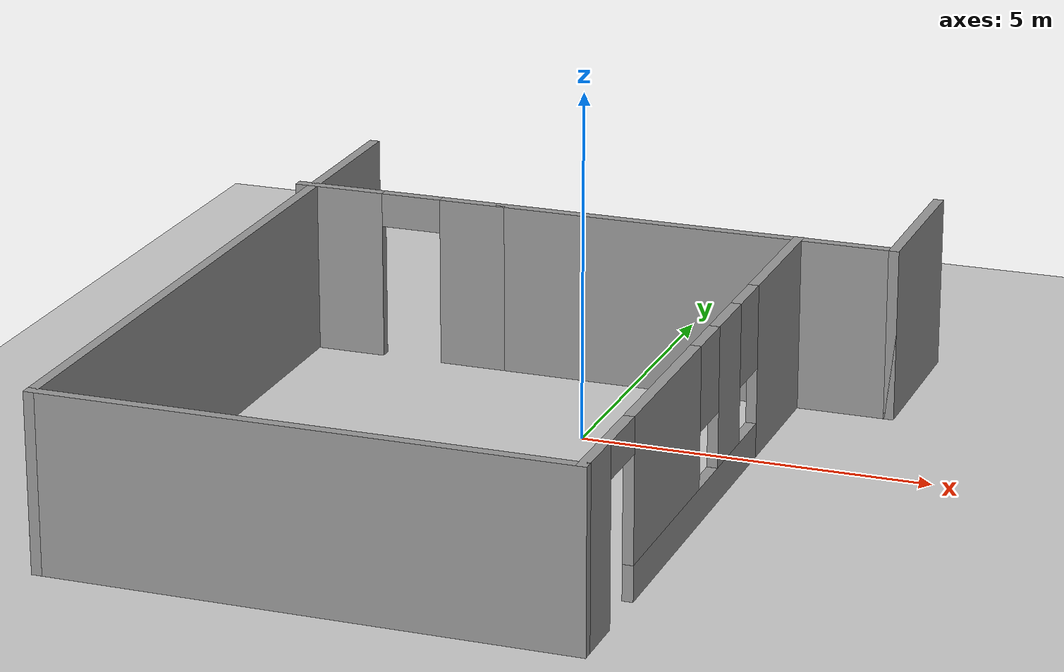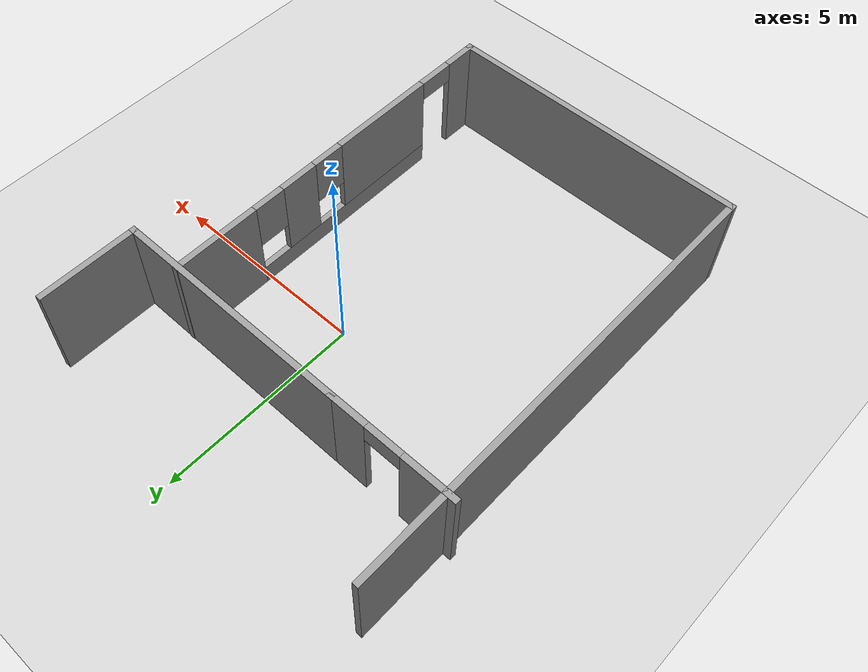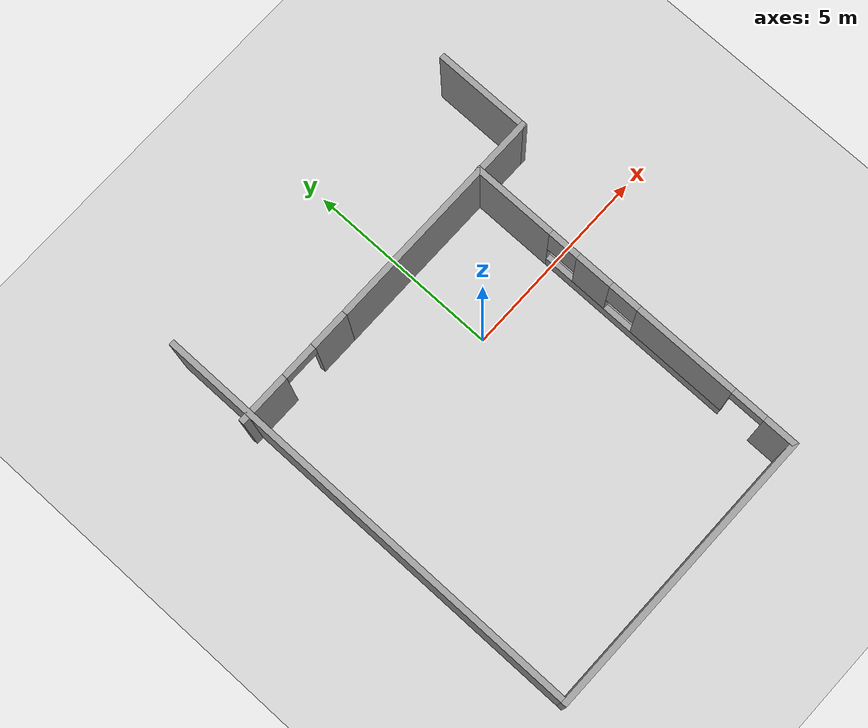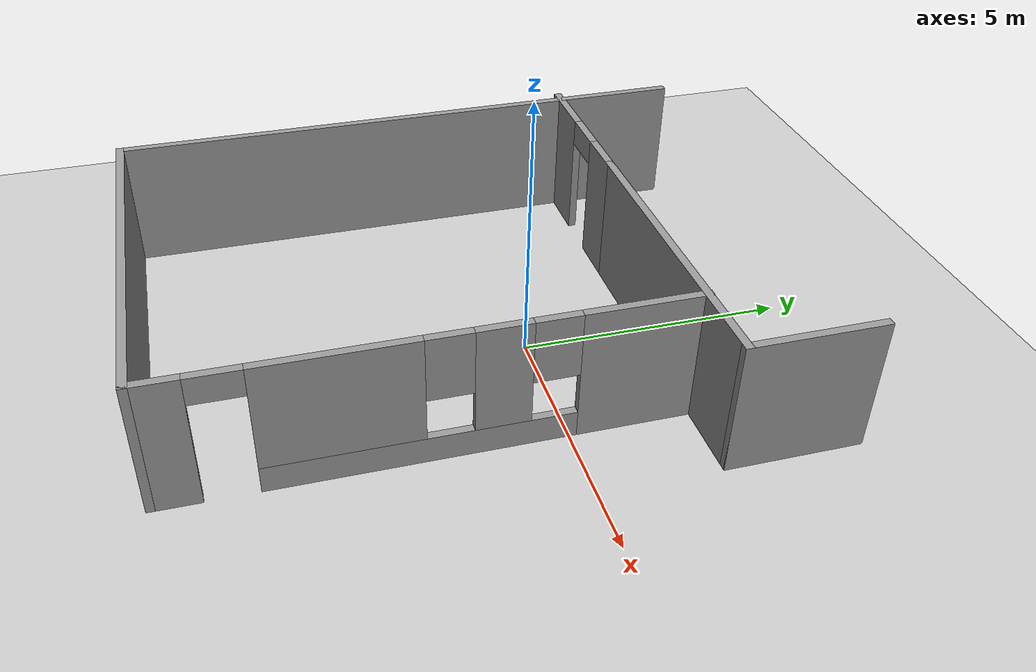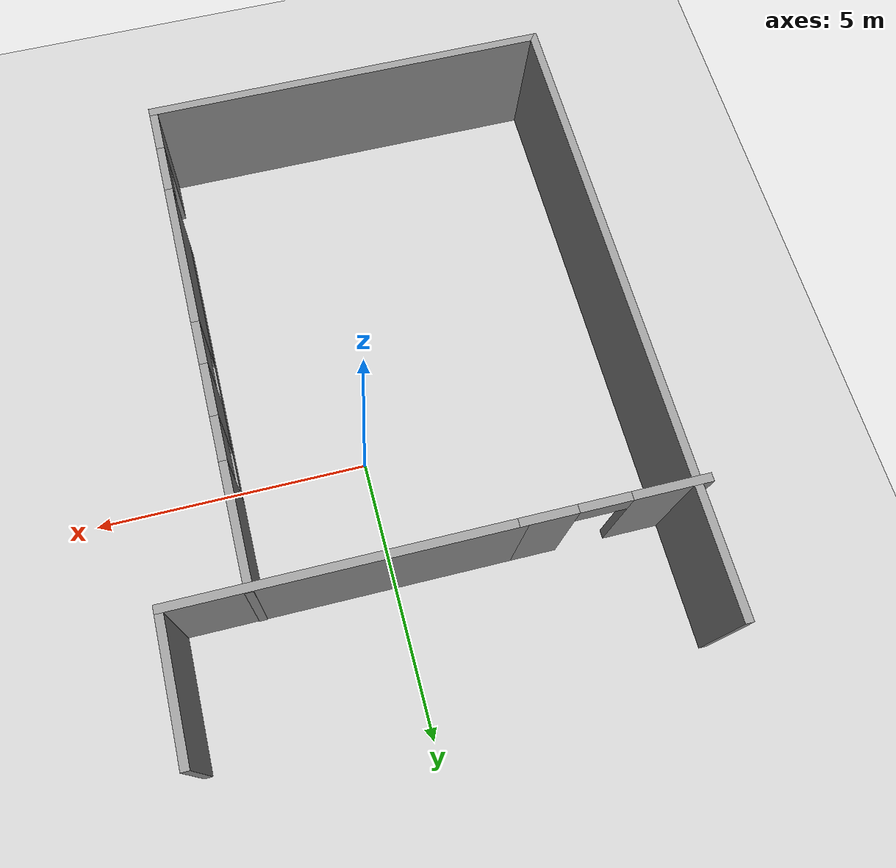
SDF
<sdf version="1.6">
 <world name="default">
  <light name="sun" type="directional">
   <pose>0 0 10 0 -0 0</pose>
   <diffuse>0.8 0.8 0.8 1</diffuse>
   <specular>0.2 0.2 0.2 1</specular>
   <attenuation>
    <range>1000</range>
    <constant>0.9</constant>
    <linear>0.01</linear>
    <quadratic>0.001</quadratic>
   </attenuation>
   <direction>-0.5 0.1 -0.9</direction>
  </light>
  <model name="ground_plane">
   <static>1</static>
   <link name="link">
    <collision name="collision">
     <geometry><plane><normal>0 0 1</normal><size>100 100</size></plane></geometry>
     <surface>
      <contact><collide_bitmask>65535</collide_bitmask></contact>
      <friction><ode><mu>100</mu><mu2>50</mu2></ode></friction>
     </surface>
    </collision>
    <visual name="visual">
     <cast_shadows>0</cast_shadows>
     <geometry><plane><normal>0 0 1</normal><size>100 100</size></plane></geometry>
     <material>
      <script><uri>file://media/materials/scripts/gazebo.material</uri><name>Gazebo/Grey</name></script>
     </material>
    </visual>
   </link>
  </model>
  <gravity>0 0 -9.8</gravity>
  <magnetic_field>6e-06 2.3e-05 -4.2e-05</magnetic_field>
  <atmosphere type="adiabatic"/>
  <physics name="default_physics" default="0" type="ode">
   <max_step_size>0.001</max_step_size>
   <real_time_factor>1</real_time_factor>
   <real_time_update_rate>1000</real_time_update_rate>
  </physics>
  <scene><ambient>0.4 0.4 0.4 1</ambient><background>0.7 0.7 0.7 1</background><shadows>1</shadows></scene>
  <audio><device>default</device></audio>
  <spherical_coordinates>
   <surface_model>EARTH_WGS84</surface_model>
   <latitude_deg>0</latitude_deg>
   <longitude_deg>0</longitude_deg>
   <elevation>0</elevation>
   <heading_deg>0</heading_deg>
  </spherical_coordinates>
  <model name="albo">
   <pose>-0.672845 -1.11817 0 0 -0 0</pose>
   <link name="Wall_10">
    <collision name="Wall_10_Collision">
     <geometry><box><size>11.5 0.15 2.5</size></box></geometry>
     <pose>0 0 1.25 0 -0 0</pose>
    </collision>
    <visual name="Wall_10_Visual">
     <pose>0 0 1.25 0 -0 0</pose>
     <geometry><box><size>11.5 0.15 2.5</size></box></geometry>
     <material>
      <script><uri>file://media/materials/scripts/gazebo.material</uri><name>Gazebo/Grey</name></script>
      <ambient>1 1 1 1</ambient>
     </material>
     <meta><layer>0</layer></meta>
    </visual>
    <pose>-4.28528 -0.045316 0 0 -0 1.5708</pose>
   </link>
   <link name="Wall_2">
    <collision name="Wall_2_Collision">
     <geometry><box><size>6 0.15 2.5</size></box></geometry>
     <pose>0 0 1.25 0 -0 0</pose>
    </collision>
    <visual name="Wall_2_Visual">
     <pose>0 0 1.25 0 -0 0</pose>
     <geometry><box><size>6 0.15 2.5</size></box></geometry>
     <material>
      <script><uri>file://media/materials/scripts/gazebo.material</uri><name>Gazebo/Grey</name></script>
      <ambient>1 1 1 1</ambient>
     </material>
     <meta><layer>0</layer></meta>
    </visual>
    <pose>1.55 3.37032 0 0 -0 0</pose>
   </link>
   <link name="Wall_3">
    <collision name="Wall_3_Collision">
     <geometry><box><size>2.5 0.15 2.5</size></box></geometry>
     <pose>0 0 1.25 0 -0 0</pose>
    </collision>
    <visual name="Wall_3_Visual">
     <pose>0 0 1.25 0 -0 0</pose>
     <geometry><box><size>2.5 0.15 2.5</size></box></geometry>
     <material>
      <script><uri>file://media/materials/scripts/gazebo.material</uri><name>Gazebo/Grey</name></script>
      <ambient>1 1 1 1</ambient>
     </material>
     <meta><layer>0</layer></meta>
    </visual>
    <pose>4.475 4.54532 0 0 -0 1.5708</pose>
   </link>
   <link name="Wall_5">
    <pose>-2.925 3.37032 0 0 -0 3.14159</pose>
    <visual name="Wall_5_Visual_0">
     <pose>-1.12877 0 1.25 0 -0 0</pose>
     <geometry><box><size>0.992454 0.15 2.5</size></box></geometry>
     <material>
      <script><uri>file://media/materials/scripts/gazebo.material</uri><name>Gazebo/Grey</name></script>
      <ambient>1 1 1 1</ambient>
     </material>
     <meta><layer>0</layer></meta>
    </visual>
    <collision name="Wall_5_Collision_0">
     <geometry><box><size>0.992454 0.15 2.5</size></box></geometry>
     <pose>-1.12877 0 1.25 0 -0 0</pose>
    </collision>
    <visual name="Wall_5_Visual_1">
     <pose>0.946227 0 1.25 0 -0 0</pose>
     <geometry><box><size>1.35755 0.15 2.5</size></box></geometry>
     <material>
      <script><uri>file://media/materials/scripts/gazebo.material</uri><name>Gazebo/Grey</name></script>
      <ambient>1 1 1 1</ambient>
     </material>
     <meta><layer>0</layer></meta>
    </visual>
    <collision name="Wall_5_Collision_1">
     <geometry><box><size>1.35755 0.15 2.5</size></box></geometry>
     <pose>0.946227 0 1.25 0 -0 0</pose>
    </collision>
    <visual name="Wall_5_Visual_2">
     <pose>-0.182546 0 2.25 0 -0 0</pose>
     <geometry><box><size>0.9 0.15 0.5</size></box></geometry>
     <material>
      <script><uri>file://media/materials/scripts/gazebo.material</uri><name>Gazebo/Grey</name></script>
      <ambient>1 1 1 1</ambient>
     </material>
     <meta><layer>0</layer></meta>
    </visual>
    <collision name="Wall_5_Collision_2">
     <geometry><box><size>0.9 0.15 0.5</size></box></geometry>
     <pose>-0.182546 0 2.25 0 -0 0</pose>
    </collision>
   </link>
   <link name="Wall_7">
    <pose>3.06472 -1.17032 0 0 -0 -1.5708</pose>
    <visual name="Wall_7_Visual_0">
     <pose>-3.52726 0 1.25 0 -0 0</pose>
     <geometry><box><size>2.19547 0.15 2.5</size></box></geometry>
     <material>
      <script><uri>file://media/materials/scripts/gazebo.material</uri><name>Gazebo/Grey</name></script>
      <ambient>1 1 1 1</ambient>
     </material>
     <meta><layer>0</layer></meta>
    </visual>
    <collision name="Wall_7_Collision_0">
     <geometry><box><size>2.19547 0.15 2.5</size></box></geometry>
     <pose>-3.52726 0 1.25 0 -0 0</pose>
    </collision>
    <visual name="Wall_7_Visual_1">
     <pose>4.17873 0 1.25 0 -0 0</pose>
     <geometry><box><size>0.892536 0.15 2.5</size></box></geometry>
     <material>
      <script><uri>file://media/materials/scripts/gazebo.material</uri><name>Gazebo/Grey</name></script>
      <ambient>1 1 1 1</ambient>
     </material>
     <meta><layer>0</layer></meta>
    </visual>
    <collision name="Wall_7_Collision_1">
     <geometry><box><size>0.892536 0.15 2.5</size></box></geometry>
     <pose>4.17873 0 1.25 0 -0 0</pose>
    </collision>
    <visual name="Wall_7_Visual_2">
     <pose>0.201468 0 0.25 0 -0 0</pose>
     <geometry><box><size>5.26199 0.15 0.5</size></box></geometry>
     <material>
      <script><uri>file://media/materials/scripts/gazebo.material</uri><name>Gazebo/Grey</name></script>
      <ambient>1 1 1 1</ambient>
     </material>
     <meta><layer>0</layer></meta>
    </visual>
    <collision name="Wall_7_Collision_2">
     <geometry><box><size>5.26199 0.15 0.5</size></box></geometry>
     <pose>0.201468 0 0.25 0 -0 0</pose>
    </collision>
    <visual name="Wall_7_Visual_3">
     <pose>-1.15006 0 1.5 0 -0 0</pose>
     <geometry><box><size>0.958938 0.15 2</size></box></geometry>
     <material>
      <script><uri>file://media/materials/scripts/gazebo.material</uri><name>Gazebo/Grey</name></script>
      <ambient>1 1 1 1</ambient>
     </material>
     <meta><layer>0</layer></meta>
    </visual>
    <collision name="Wall_7_Collision_3">
     <geometry><box><size>0.958938 0.15 2</size></box></geometry>
     <pose>-1.15006 0 1.5 0 -0 0</pose>
    </collision>
    <visual name="Wall_7_Visual_4">
     <pose>1.48094 0 1.5 0 -0 0</pose>
     <geometry><box><size>2.70305 0.15 2</size></box></geometry>
     <material>
      <script><uri>file://media/materials/scripts/gazebo.material</uri><name>Gazebo/Grey</name></script>
      <ambient>1 1 1 1</ambient>
     </material>
     <meta><layer>0</layer></meta>
    </visual>
    <collision name="Wall_7_Collision_4">
     <geometry><box><size>2.70305 0.15 2</size></box></geometry>
     <pose>1.48094 0 1.5 0 -0 0</pose>
    </collision>
    <visual name="Wall_7_Visual_5">
     <pose>-2.02953 0 1.9 0 -0 0</pose>
     <geometry><box><size>0.8 0.15 1.2</size></box></geometry>
     <material>
      <script><uri>file://media/materials/scripts/gazebo.material</uri><name>Gazebo/Grey</name></script>
      <ambient>1 1 1 1</ambient>
     </material>
     <meta><layer>0</layer></meta>
    </visual>
    <collision name="Wall_7_Collision_5">
     <geometry><box><size>0.8 0.15 1.2</size></box></geometry>
     <pose>-2.02953 0 1.9 0 -0 0</pose>
    </collision>
    <visual name="Wall_7_Visual_6">
     <pose>-0.270591 0 1.9 0 -0 0</pose>
     <geometry><box><size>0.8 0.15 1.2</size></box></geometry>
     <material>
      <script><uri>file://media/materials/scripts/gazebo.material</uri><name>Gazebo/Grey</name></script>
      <ambient>1 1 1 1</ambient>
     </material>
     <meta><layer>0</layer></meta>
    </visual>
    <collision name="Wall_7_Collision_6">
     <geometry><box><size>0.8 0.15 1.2</size></box></geometry>
     <pose>-0.270591 0 1.9 0 -0 0</pose>
    </collision>
    <visual name="Wall_7_Visual_7">
     <pose>3.28246 0 2.25 0 -0 0</pose>
     <geometry><box><size>0.9 0.15 0.5</size></box></geometry>
     <material>
      <script><uri>file://media/materials/scripts/gazebo.material</uri><name>Gazebo/Grey</name></script>
      <ambient>1 1 1 1</ambient>
     </material>
     <meta><layer>0</layer></meta>
    </visual>
    <collision name="Wall_7_Collision_7">
     <geometry><box><size>0.9 0.15 0.5</size></box></geometry>
     <pose>3.28246 0 2.25 0 -0 0</pose>
    </collision>
   </link>
   <link name="Wall_9">
    <collision name="Wall_9_Collision">
     <geometry><box><size>7.5 0.15 2.5</size></box></geometry>
     <pose>0 0 1.25 0 -0 0</pose>
    </collision>
    <visual name="Wall_9_Visual">
     <pose>0 0 1.25 0 -0 0</pose>
     <geometry><box><size>7.5 0.15 2.5</size></box></geometry>
     <material>
      <script><uri>file://media/materials/scripts/gazebo.material</uri><name>Gazebo/Grey</name></script>
      <ambient>1 1 1 1</ambient>
     </material>
     <meta><layer>0</layer></meta>
    </visual>
    <pose>-0.610283 -5.72032 0 0 -0 3.14159</pose>
   </link>
   <static>1</static>
  </model>
 </world>
</sdf>
